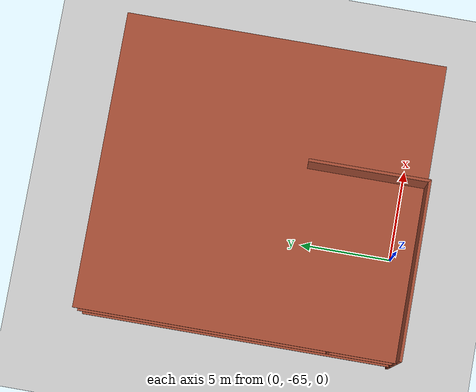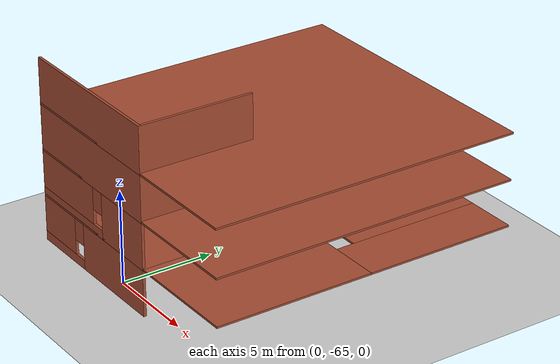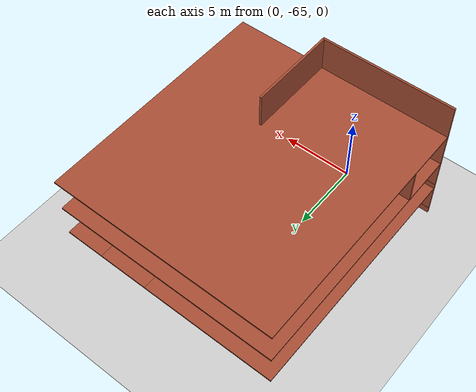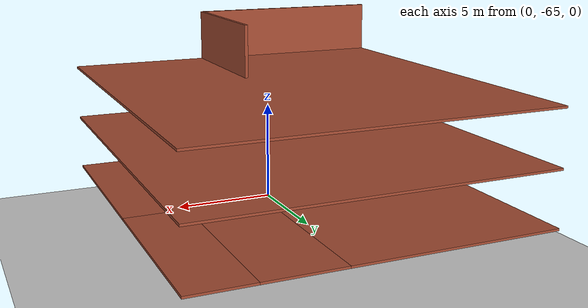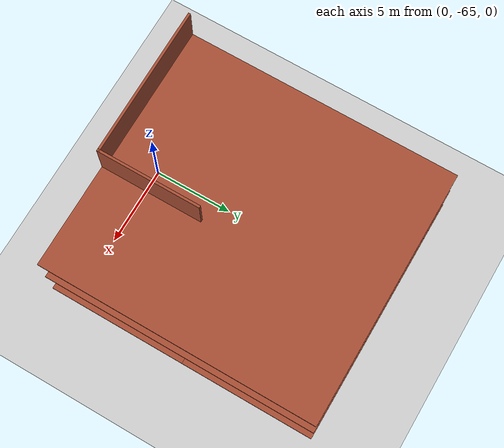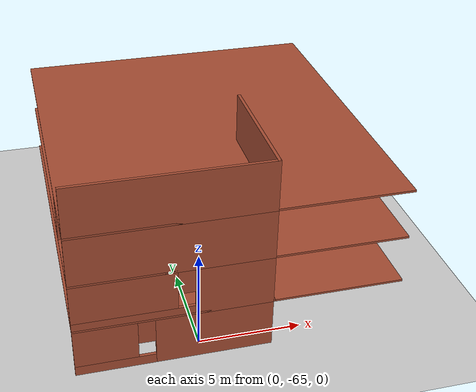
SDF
<sdf version="1.7">
 <world name="default">
  <model name="ground_plane">
   <static>1</static>
   <link name="link">
    <collision name="collision">
     <geometry><plane><normal>0 0 1</normal><size>300 300</size></plane></geometry>
     <surface>
      <contact><collide_bitmask>65535</collide_bitmask></contact>
      <friction><ode><mu>100</mu><mu2>50</mu2></ode></friction>
     </surface>
    </collision>
    <visual name="visual">
     <cast_shadows>0</cast_shadows>
     <geometry><plane><normal>0 0 1</normal><size>300 300</size></plane></geometry>
     <material>
      <script><uri>file://media/materials/scripts/gazebo.material</uri><name>Gazebo/Grey</name></script>
     </material>
    </visual>
   </link>
  </model>
  <model name="Drone_House_2">
   <pose>1.8622 -57.4379 0 0 -0 0</pose>
   <link name="Floor_0">
    <pose>-1e-06 0 2.5 0 -0 0</pose>
    <visual name="Floor_0_Visual_0">
     <pose>-3.13292 0 0.05 0 -0 0</pose>
     <geometry><box><size>9.33629 16.85 0.1</size></box></geometry>
     <material>
      <script><uri>file://media/materials/scripts/gazebo.material</uri><name>Gazebo/Bricks</name></script>
      <ambient>1 1 1 1</ambient>
     </material>
     <meta><layer>1</layer></meta>
    </visual>
    <collision name="Floor_0_Collision_0">
     <geometry><box><size>9.33629 16.85 0.1</size></box></geometry>
     <pose>-3.13292 0 0.05 0 -0 0</pose>
    </collision>
    <visual name="Floor_0_Visual_1">
     <pose>4.66814 -4.13229 0.05 0 -0 0</pose>
     <geometry><box><size>6.26584 8.58542 0.1</size></box></geometry>
     <material>
      <script><uri>file://media/materials/scripts/gazebo.material</uri><name>Gazebo/Bricks</name></script>
      <ambient>1 1 1 1</ambient>
     </material>
     <meta><layer>1</layer></meta>
    </visual>
    <collision name="Floor_0_Collision_1">
     <geometry><box><size>6.26584 8.58542 0.1</size></box></geometry>
     <pose>4.66814 -4.13229 0.05 0 -0 0</pose>
    </collision>
    <visual name="Floor_0_Visual_2">
     <pose>6.41814 4.29271 0.05 0 -0 0</pose>
     <geometry><box><size>2.76584 8.26458 0.1</size></box></geometry>
     <material>
      <script><uri>file://media/materials/scripts/gazebo.material</uri><name>Gazebo/Bricks</name></script>
      <ambient>1 1 1 1</ambient>
     </material>
     <meta><layer>1</layer></meta>
    </visual>
    <collision name="Floor_0_Collision_2">
     <geometry><box><size>2.76584 8.26458 0.1</size></box></geometry>
     <pose>6.41814 4.29271 0.05 0 -0 0</pose>
    </collision>
    <visual name="Floor_0_Visual_3">
     <pose>3.28522 4.79271 0.05 0 -0 0</pose>
     <geometry><box><size>3.5 7.26458 0.1</size></box></geometry>
     <material>
      <script><uri>file://media/materials/scripts/gazebo.material</uri><name>Gazebo/Bricks</name></script>
      <ambient>1 1 1 1</ambient>
     </material>
     <meta><layer>1</layer></meta>
    </visual>
    <collision name="Floor_0_Collision_3">
     <geometry><box><size>3.5 7.26458 0.1</size></box></geometry>
     <pose>3.28522 4.79271 0.05 0 -0 0</pose>
    </collision>
   </link>
   <link name="Floor_5">
    <collision name="Floor_5_Collision">
     <geometry><box><size>15.6021 16.85 0.1</size></box></geometry>
     <pose>0 0 0.05 0 -0 0</pose>
    </collision>
    <visual name="Floor_5_Visual">
     <pose>0 0 0.05 0 -0 0</pose>
     <geometry><box><size>15.6021 16.85 0.1</size></box></geometry>
     <material>
      <script><uri>file://media/materials/scripts/gazebo.material</uri><name>Gazebo/Bricks</name></script>
      <ambient>1 1 1 1</ambient>
     </material>
     <meta><layer>2</layer></meta>
    </visual>
    <pose>-1e-06 0 5 0 -0 0</pose>
   </link>
   <link name="Floor_6">
    <collision name="Floor_6_Collision">
     <geometry><box><size>15.6021 16.85 0.1</size></box></geometry>
     <pose>0 0 0.05 0 -0 0</pose>
    </collision>
    <visual name="Floor_6_Visual">
     <pose>0 0 0.05 0 -0 0</pose>
     <geometry><box><size>15.6021 16.85 0.1</size></box></geometry>
     <material>
      <script><uri>file://media/materials/scripts/gazebo.material</uri><name>Gazebo/Bricks</name></script>
      <ambient>1 1 1 1</ambient>
     </material>
     <meta><layer>3</layer></meta>
    </visual>
    <pose>-1e-06 0 7.5 0 -0 0</pose>
   </link>
   <link name="Wall_100">
    <collision name="Wall_100_Collision">
     <geometry><box><size>6.25 0.15 2.5</size></box></geometry>
     <pose>0 0 1.25 0 -0 0</pose>
    </collision>
    <visual name="Wall_100_Visual">
     <pose>0 0 1.25 0 -0 0</pose>
     <geometry><box><size>6.25 0.15 2.5</size></box></geometry>
     <material>
      <script><uri>file://media/materials/scripts/gazebo.material</uri><name>Gazebo/Bricks</name></script>
      <ambient>1 1 1 1</ambient>
     </material>
     <meta><layer>2</layer></meta>
    </visual>
    <pose>1.37606 -5.3 5 0 -0 1.5708</pose>
   </link>
   <link name="Wall_104">
    <collision name="Wall_104_Collision">
     <geometry><box><size>9.25 0.15 2.5</size></box></geometry>
     <pose>0 0 1.25 0 -0 0</pose>
    </collision>
    <visual name="Wall_104_Visual">
     <pose>0 0 1.25 0 -0 0</pose>
     <geometry><box><size>9.25 0.15 2.5</size></box></geometry>
     <material>
      <script><uri>file://media/materials/scripts/gazebo.material</uri><name>Gazebo/Bricks</name></script>
      <ambient>1 1 1 1</ambient>
     </material>
     <meta><layer>2</layer></meta>
    </visual>
    <pose>-3.17394 -8.35 5 0 -0 3.14159</pose>
   </link>
   <link name="Wall_122">
    <collision name="Wall_122_Collision">
     <geometry><box><size>6.25 0.15 2.5</size></box></geometry>
     <pose>0 0 1.25 0 -0 0</pose>
    </collision>
    <visual name="Wall_122_Visual">
     <pose>0 0 1.25 0 -0 0</pose>
     <geometry><box><size>6.25 0.15 2.5</size></box></geometry>
     <material>
      <script><uri>file://media/materials/scripts/gazebo.material</uri><name>Gazebo/Bricks</name></script>
      <ambient>1 1 1 1</ambient>
     </material>
     <meta><layer>3</layer></meta>
    </visual>
    <pose>1.37606 -5.3 7.5 0 -0 1.5708</pose>
   </link>
   <link name="Wall_126">
    <collision name="Wall_126_Collision">
     <geometry><box><size>9.25 0.15 2.5</size></box></geometry>
     <pose>0 0 1.25 0 -0 0</pose>
    </collision>
    <visual name="Wall_126_Visual">
     <pose>0 0 1.25 0 -0 0</pose>
     <geometry><box><size>9.25 0.15 2.5</size></box></geometry>
     <material>
      <script><uri>file://media/materials/scripts/gazebo.material</uri><name>Gazebo/Bricks</name></script>
      <ambient>1 1 1 1</ambient>
     </material>
     <meta><layer>3</layer></meta>
    </visual>
    <pose>-3.17394 -8.35 7.5 0 -0 3.14159</pose>
   </link>
   <link name="Wall_31">
    <pose>-3.17394 -8.35 0 0 -0 3.14159</pose>
    <visual name="Wall_31_Visual_0">
     <pose>-1.87175 0 1.25 0 -0 0</pose>
     <geometry><box><size>5.5065 0.15 2.5</size></box></geometry>
     <material>
      <script><uri>file://media/materials/scripts/gazebo.material</uri><name>Gazebo/Bricks</name></script>
      <ambient>1 1 1 1</ambient>
     </material>
     <meta><layer>0</layer></meta>
    </visual>
    <collision name="Wall_31_Collision_0">
     <geometry><box><size>5.5065 0.15 2.5</size></box></geometry>
     <pose>-1.87175 0 1.25 0 -0 0</pose>
    </collision>
    <visual name="Wall_31_Visual_1">
     <pose>2.75325 0 0.25 0 -0 0</pose>
     <geometry><box><size>3.7435 0.15 0.5</size></box></geometry>
     <material>
      <script><uri>file://media/materials/scripts/gazebo.material</uri><name>Gazebo/Bricks</name></script>
      <ambient>1 1 1 1</ambient>
     </material>
     <meta><layer>0</layer></meta>
    </visual>
    <collision name="Wall_31_Collision_1">
     <geometry><box><size>3.7435 0.15 0.5</size></box></geometry>
     <pose>2.75325 0 0.25 0 -0 0</pose>
    </collision>
    <visual name="Wall_31_Visual_2">
     <pose>3.15325 0 1.5 0 -0 0</pose>
     <geometry><box><size>2.9435 0.15 2</size></box></geometry>
     <material>
      <script><uri>file://media/materials/scripts/gazebo.material</uri><name>Gazebo/Bricks</name></script>
      <ambient>1 1 1 1</ambient>
     </material>
     <meta><layer>0</layer></meta>
    </visual>
    <collision name="Wall_31_Collision_2">
     <geometry><box><size>2.9435 0.15 2</size></box></geometry>
     <pose>3.15325 0 1.5 0 -0 0</pose>
    </collision>
    <visual name="Wall_31_Visual_3">
     <pose>1.2815 0 1.9 0 -0 0</pose>
     <geometry><box><size>0.8 0.15 1.2</size></box></geometry>
     <material>
      <script><uri>file://media/materials/scripts/gazebo.material</uri><name>Gazebo/Bricks</name></script>
      <ambient>1 1 1 1</ambient>
     </material>
     <meta><layer>0</layer></meta>
    </visual>
    <collision name="Wall_31_Collision_3">
     <geometry><box><size>0.8 0.15 1.2</size></box></geometry>
     <pose>1.2815 0 1.9 0 -0 0</pose>
    </collision>
   </link>
   <link name="Wall_55">
    <pose>-3.17394 -8.35 2.5 0 -0 3.14159</pose>
    <visual name="Wall_55_Visual_0">
     <pose>-2.80276 0 1.25 0 -0 0</pose>
     <geometry><box><size>3.64448 0.15 2.5</size></box></geometry>
     <material>
      <script><uri>file://media/materials/scripts/gazebo.material</uri><name>Gazebo/Bricks</name></script>
      <ambient>1 1 1 1</ambient>
     </material>
     <meta><layer>1</layer></meta>
    </visual>
    <collision name="Wall_55_Collision_0">
     <geometry><box><size>3.64448 0.15 2.5</size></box></geometry>
     <pose>-2.80276 0 1.25 0 -0 0</pose>
    </collision>
    <visual name="Wall_55_Visual_1">
     <pose>1.82224 0 0.25 0 -0 0</pose>
     <geometry><box><size>5.60551 0.15 0.5</size></box></geometry>
     <material>
      <script><uri>file://media/materials/scripts/gazebo.material</uri><name>Gazebo/Bricks</name></script>
      <ambient>1 1 1 1</ambient>
     </material>
     <meta><layer>1</layer></meta>
    </visual>
    <collision name="Wall_55_Collision_1">
     <geometry><box><size>5.60551 0.15 0.5</size></box></geometry>
     <pose>1.82224 0 0.25 0 -0 0</pose>
    </collision>
    <visual name="Wall_55_Visual_2">
     <pose>2.22224 0 1.5 0 -0 0</pose>
     <geometry><box><size>4.80551 0.15 2</size></box></geometry>
     <material>
      <script><uri>file://media/materials/scripts/gazebo.material</uri><name>Gazebo/Bricks</name></script>
      <ambient>1 1 1 1</ambient>
     </material>
     <meta><layer>1</layer></meta>
    </visual>
    <collision name="Wall_55_Collision_2">
     <geometry><box><size>4.80551 0.15 2</size></box></geometry>
     <pose>2.22224 0 1.5 0 -0 0</pose>
    </collision>
    <visual name="Wall_55_Visual_3">
     <pose>-0.580515 0 1.9 0 -0 0</pose>
     <geometry><box><size>0.8 0.15 1.2</size></box></geometry>
     <material>
      <script><uri>file://media/materials/scripts/gazebo.material</uri><name>Gazebo/Bricks</name></script>
      <ambient>1 1 1 1</ambient>
     </material>
     <meta><layer>1</layer></meta>
    </visual>
    <collision name="Wall_55_Collision_3">
     <geometry><box><size>0.8 0.15 1.2</size></box></geometry>
     <pose>-0.580515 0 1.9 0 -0 0</pose>
    </collision>
   </link>
   <link name="Wall_85">
    <collision name="Wall_85_Collision">
     <geometry><box><size>6.75 0.15 2.5</size></box></geometry>
     <pose>0 0 1.25 0 -0 0</pose>
    </collision>
    <visual name="Wall_85_Visual">
     <pose>0 0 1.25 0 -0 0</pose>
     <geometry><box><size>6.75 0.15 2.5</size></box></geometry>
     <material>
      <script><uri>file://media/materials/scripts/gazebo.material</uri><name>Gazebo/Bricks</name></script>
      <ambient>1 1 1 1</ambient>
     </material>
     <meta><layer>2</layer></meta>
    </visual>
    <pose>-4.42394 -4.85 5 0 -0 0</pose>
   </link>
   <static>1</static>
  </model>
 </world>
</sdf>
